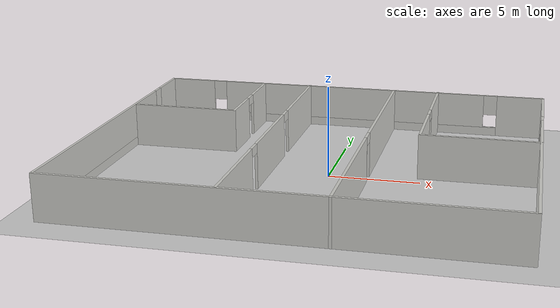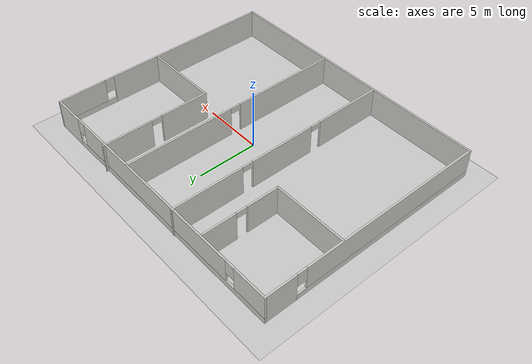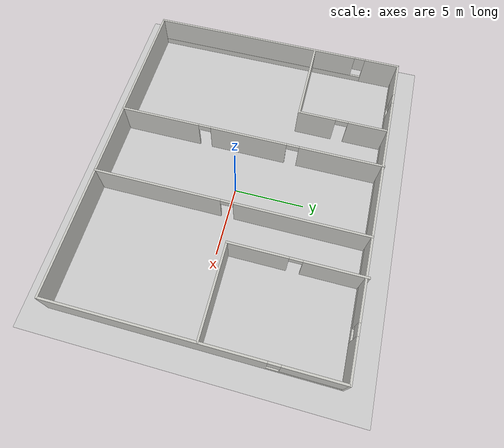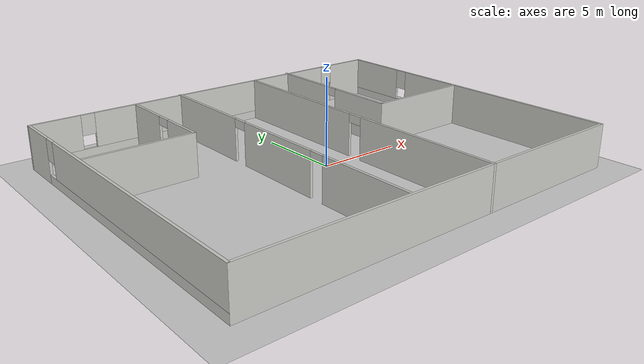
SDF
<sdf version="1.7">
 <world name="indoor">
  <light name="sun" type="directional">
   <pose>0 0 10 0 -0 0</pose>
   <diffuse>0.8 0.8 0.8 1</diffuse>
   <specular>0.2 0.2 0.2 1</specular>
   <attenuation>
    <range>1000</range>
    <constant>0.9</constant>
    <linear>0.01</linear>
    <quadratic>0.001</quadratic>
   </attenuation>
   <direction>-0.5 0.1 -0.9</direction>
   <spot><inner_angle>0</inner_angle><outer_angle>0</outer_angle><falloff>0</falloff></spot>
  </light>
  <model name="ground_plane">
   <static>1</static>
   <link name="link">
    <collision name="collision">
     <geometry><plane><normal>0 0 1</normal><size>100 100</size></plane></geometry>
     <surface>
      <contact><collide_bitmask>65535</collide_bitmask></contact>
      <friction><ode><mu>100</mu><mu2>50</mu2></ode></friction>
     </surface>
    </collision>
    <visual name="visual">
     <cast_shadows>0</cast_shadows>
     <geometry><plane><normal>0 0 1</normal><size>100 100</size></plane></geometry>
     <material>
      <script><uri>file://media/materials/scripts/gazebo.material</uri><name>Gazebo/Grey</name></script>
     </material>
    </visual>
   </link>
  </model>
  <gravity>0 0 -9.8</gravity>
  <magnetic_field>6e-06 2.3e-05 -4.2e-05</magnetic_field>
  <atmosphere type="adiabatic"/>
  <physics type="ode">
   <max_step_size>0.001</max_step_size>
   <real_time_factor>1</real_time_factor>
   <real_time_update_rate>1000</real_time_update_rate>
  </physics>
  <scene><ambient>0.4 0.4 0.4 1</ambient><background>0.7 0.7 0.7 1</background><shadows>1</shadows></scene>
  <audio><device>default</device></audio>
  <spherical_coordinates>
   <surface_model>EARTH_WGS84</surface_model>
   <latitude_deg>0</latitude_deg>
   <longitude_deg>0</longitude_deg>
   <elevation>0</elevation>
   <heading_deg>0</heading_deg>
  </spherical_coordinates>
  <model name="Untitled">
   <pose>-0.598824 0.224669 0 0 -0 0</pose>
   <link name="Wall_11">
    <pose>5.43872 5.08028 0 0 -0 -1.5708</pose>
    <visual name="Wall_11_Visual_0">
     <pose>-2.52034 0 1.25 0 -0 0</pose>
     <geometry><box><size>4.20933 0.15 2.5</size></box></geometry>
     <material>
      <script><uri>file://media/materials/scripts/gazebo.material</uri><name>Gazebo/CeilingTiled</name></script>
      <ambient>1 1 1 1</ambient>
     </material>
     <meta><layer>0</layer></meta>
    </visual>
    <collision name="Wall_11_Collision_0">
     <geometry><box><size>4.20933 0.15 2.5</size></box></geometry>
     <pose>-2.52034 0 1.25 0 -0 0</pose>
    </collision>
    <visual name="Wall_11_Visual_1">
     <pose>2.55466 0 1.25 0 -0 0</pose>
     <geometry><box><size>4.14067 0.15 2.5</size></box></geometry>
     <material>
      <script><uri>file://media/materials/scripts/gazebo.material</uri><name>Gazebo/CeilingTiled</name></script>
      <ambient>1 1 1 1</ambient>
     </material>
     <meta><layer>0</layer></meta>
    </visual>
    <collision name="Wall_11_Collision_1">
     <geometry><box><size>4.14067 0.15 2.5</size></box></geometry>
     <pose>2.55466 0 1.25 0 -0 0</pose>
    </collision>
    <visual name="Wall_11_Visual_2">
     <pose>0.034327 0 2.25 0 -0 0</pose>
     <geometry><box><size>0.9 0.15 0.5</size></box></geometry>
     <material>
      <script><uri>file://media/materials/scripts/gazebo.material</uri><name>Gazebo/CeilingTiled</name></script>
      <ambient>1 1 1 1</ambient>
     </material>
     <meta><layer>0</layer></meta>
    </visual>
    <collision name="Wall_11_Collision_2">
     <geometry><box><size>0.9 0.15 0.5</size></box></geometry>
     <pose>0.034327 0 2.25 0 -0 0</pose>
    </collision>
   </link>
   <link name="Wall_12">
    <collision name="Wall_12_Collision">
     <geometry><box><size>6.5 0.15 2.5</size></box></geometry>
     <pose>0 0 1.25 0 -0 0</pose>
    </collision>
    <visual name="Wall_12_Visual">
     <pose>0 0 1.25 0 -0 0</pose>
     <geometry><box><size>6.5 0.15 2.5</size></box></geometry>
     <material>
      <script><uri>file://media/materials/scripts/gazebo.material</uri><name>Gazebo/CeilingTiled</name></script>
      <ambient>1 1 1 1</ambient>
     </material>
     <meta><layer>0</layer></meta>
    </visual>
    <pose>8.61372 0.530282 0 0 -0 0</pose>
   </link>
   <link name="Wall_14">
    <pose>-2.66764 -0.01641 0 0 -0 -1.5708</pose>
    <visual name="Wall_14_Visual_0">
     <pose>-6.59866 0 1.25 0 -0 0</pose>
     <geometry><box><size>6.05267 0.15 2.5</size></box></geometry>
     <material>
      <script><uri>file://media/materials/scripts/gazebo.material</uri><name>Gazebo/CeilingTiled</name></script>
      <ambient>1 1 1 1</ambient>
     </material>
     <meta><layer>0</layer></meta>
    </visual>
    <collision name="Wall_14_Collision_0">
     <geometry><box><size>6.05267 0.15 2.5</size></box></geometry>
     <pose>-6.59866 0 1.25 0 -0 0</pose>
    </collision>
    <visual name="Wall_14_Visual_1">
     <pose>0.122899 0 1.25 0 -0 0</pose>
     <geometry><box><size>5.59045 0.15 2.5</size></box></geometry>
     <material>
      <script><uri>file://media/materials/scripts/gazebo.material</uri><name>Gazebo/CeilingTiled</name></script>
      <ambient>1 1 1 1</ambient>
     </material>
     <meta><layer>0</layer></meta>
    </visual>
    <collision name="Wall_14_Collision_1">
     <geometry><box><size>5.59045 0.15 2.5</size></box></geometry>
     <pose>0.122899 0 1.25 0 -0 0</pose>
    </collision>
    <visual name="Wall_14_Visual_2">
     <pose>6.72156 0 1.25 0 -0 0</pose>
     <geometry><box><size>5.80688 0.15 2.5</size></box></geometry>
     <material>
      <script><uri>file://media/materials/scripts/gazebo.material</uri><name>Gazebo/CeilingTiled</name></script>
      <ambient>1 1 1 1</ambient>
     </material>
     <meta><layer>0</layer></meta>
    </visual>
    <collision name="Wall_14_Collision_2">
     <geometry><box><size>5.80688 0.15 2.5</size></box></geometry>
     <pose>6.72156 0 1.25 0 -0 0</pose>
    </collision>
    <visual name="Wall_14_Visual_3">
     <pose>-3.12233 0 2.25 0 -0 0</pose>
     <geometry><box><size>0.9 0.15 0.5</size></box></geometry>
     <material>
      <script><uri>file://media/materials/scripts/gazebo.material</uri><name>Gazebo/CeilingTiled</name></script>
      <ambient>1 1 1 1</ambient>
     </material>
     <meta><layer>0</layer></meta>
    </visual>
    <collision name="Wall_14_Collision_3">
     <geometry><box><size>0.9 0.15 0.5</size></box></geometry>
     <pose>-3.12233 0 2.25 0 -0 0</pose>
    </collision>
    <visual name="Wall_14_Visual_4">
     <pose>3.36812 0 2.25 0 -0 0</pose>
     <geometry><box><size>0.9 0.15 0.5</size></box></geometry>
     <material>
      <script><uri>file://media/materials/scripts/gazebo.material</uri><name>Gazebo/CeilingTiled</name></script>
      <ambient>1 1 1 1</ambient>
     </material>
     <meta><layer>0</layer></meta>
    </visual>
    <collision name="Wall_14_Collision_4">
     <geometry><box><size>0.9 0.15 0.5</size></box></geometry>
     <pose>3.36812 0 2.25 0 -0 0</pose>
    </collision>
   </link>
   <link name="Wall_16">
    <pose>2.71269 -0.080282 0 0 -0 -1.5708</pose>
    <visual name="Wall_16_Visual_0">
     <pose>-4.96809 0 1.25 0 -0 0</pose>
     <geometry><box><size>9.31383 0.15 2.5</size></box></geometry>
     <material>
      <script><uri>file://media/materials/scripts/gazebo.material</uri><name>Gazebo/CeilingTiled</name></script>
      <ambient>1 1 1 1</ambient>
     </material>
     <meta><layer>0</layer></meta>
    </visual>
    <collision name="Wall_16_Collision_0">
     <geometry><box><size>9.31383 0.15 2.5</size></box></geometry>
     <pose>-4.96809 0 1.25 0 -0 0</pose>
    </collision>
    <visual name="Wall_16_Visual_1">
     <pose>5.10691 0 1.25 0 -0 0</pose>
     <geometry><box><size>9.03617 0.15 2.5</size></box></geometry>
     <material>
      <script><uri>file://media/materials/scripts/gazebo.material</uri><name>Gazebo/CeilingTiled</name></script>
      <ambient>1 1 1 1</ambient>
     </material>
     <meta><layer>0</layer></meta>
    </visual>
    <collision name="Wall_16_Collision_1">
     <geometry><box><size>9.03617 0.15 2.5</size></box></geometry>
     <pose>5.10691 0 1.25 0 -0 0</pose>
    </collision>
    <visual name="Wall_16_Visual_2">
     <pose>0.138828 0 2.25 0 -0 0</pose>
     <geometry><box><size>0.9 0.15 0.5</size></box></geometry>
     <material>
      <script><uri>file://media/materials/scripts/gazebo.material</uri><name>Gazebo/CeilingTiled</name></script>
      <ambient>1 1 1 1</ambient>
     </material>
     <meta><layer>0</layer></meta>
    </visual>
    <collision name="Wall_16_Collision_2">
     <geometry><box><size>0.9 0.15 0.5</size></box></geometry>
     <pose>0.138828 0 2.25 0 -0 0</pose>
    </collision>
   </link>
   <link name="Wall_3">
    <pose>-11.8 -0.078916 0 0 -0 -1.5708</pose>
    <visual name="Wall_3_Visual_0">
     <pose>-8.30761 0 1.25 0 -0 0</pose>
     <geometry><box><size>2.63479 0.15 2.5</size></box></geometry>
     <material>
      <script><uri>file://media/materials/scripts/gazebo.material</uri><name>Gazebo/CeilingTiled</name></script>
      <ambient>1 1 1 1</ambient>
     </material>
     <meta><layer>0</layer></meta>
    </visual>
    <collision name="Wall_3_Collision_0">
     <geometry><box><size>2.63479 0.15 2.5</size></box></geometry>
     <pose>-8.30761 0 1.25 0 -0 0</pose>
    </collision>
    <visual name="Wall_3_Visual_1">
     <pose>1.31739 0 0.25 0 -0 0</pose>
     <geometry><box><size>16.6152 0.15 0.5</size></box></geometry>
     <material>
      <script><uri>file://media/materials/scripts/gazebo.material</uri><name>Gazebo/CeilingTiled</name></script>
      <ambient>1 1 1 1</ambient>
     </material>
     <meta><layer>0</layer></meta>
    </visual>
    <collision name="Wall_3_Collision_1">
     <geometry><box><size>16.6152 0.15 0.5</size></box></geometry>
     <pose>1.31739 0 0.25 0 -0 0</pose>
    </collision>
    <visual name="Wall_3_Visual_2">
     <pose>1.71739 0 1.5 0 -0 0</pose>
     <geometry><box><size>15.8152 0.15 2</size></box></geometry>
     <material>
      <script><uri>file://media/materials/scripts/gazebo.material</uri><name>Gazebo/CeilingTiled</name></script>
      <ambient>1 1 1 1</ambient>
     </material>
     <meta><layer>0</layer></meta>
    </visual>
    <collision name="Wall_3_Collision_2">
     <geometry><box><size>15.8152 0.15 2</size></box></geometry>
     <pose>1.71739 0 1.5 0 -0 0</pose>
    </collision>
    <visual name="Wall_3_Visual_3">
     <pose>-6.59021 0 1.9 0 -0 0</pose>
     <geometry><box><size>0.8 0.15 1.2</size></box></geometry>
     <material>
      <script><uri>file://media/materials/scripts/gazebo.material</uri><name>Gazebo/CeilingTiled</name></script>
      <ambient>1 1 1 1</ambient>
     </material>
     <meta><layer>0</layer></meta>
    </visual>
    <collision name="Wall_3_Collision_3">
     <geometry><box><size>0.8 0.15 1.2</size></box></geometry>
     <pose>-6.59021 0 1.9 0 -0 0</pose>
    </collision>
   </link>
   <link name="Wall_4">
    <collision name="Wall_4_Collision">
     <geometry><box><size>23.75 0.15 2.5</size></box></geometry>
     <pose>0 0 1.25 0 -0 0</pose>
    </collision>
    <visual name="Wall_4_Visual">
     <pose>0 0 1.25 0 -0 0</pose>
     <geometry><box><size>23.75 0.15 2.5</size></box></geometry>
     <material>
      <script><uri>file://media/materials/scripts/gazebo.material</uri><name>Gazebo/CeilingTiled</name></script>
      <ambient>1 1 1 1</ambient>
     </material>
     <meta><layer>0</layer></meta>
    </visual>
    <pose>0 -9.62892 0 0 -0 0</pose>
   </link>
   <link name="Wall_5">
    <pose>11.8 -0.078916 0 0 -0 1.5708</pose>
    <visual name="Wall_5_Visual_0">
     <pose>-2.41508 0 1.25 0 -0 0</pose>
     <geometry><box><size>14.4198 0.15 2.5</size></box></geometry>
     <material>
      <script><uri>file://media/materials/scripts/gazebo.material</uri><name>Gazebo/CeilingTiled</name></script>
      <ambient>1 1 1 1</ambient>
     </material>
     <meta><layer>0</layer></meta>
    </visual>
    <collision name="Wall_5_Collision_0">
     <geometry><box><size>14.4198 0.15 2.5</size></box></geometry>
     <pose>-2.41508 0 1.25 0 -0 0</pose>
    </collision>
    <visual name="Wall_5_Visual_1">
     <pose>7.20992 0 0.25 0 -0 0</pose>
     <geometry><box><size>4.83017 0.15 0.5</size></box></geometry>
     <material>
      <script><uri>file://media/materials/scripts/gazebo.material</uri><name>Gazebo/CeilingTiled</name></script>
      <ambient>1 1 1 1</ambient>
     </material>
     <meta><layer>0</layer></meta>
    </visual>
    <collision name="Wall_5_Collision_1">
     <geometry><box><size>4.83017 0.15 0.5</size></box></geometry>
     <pose>7.20992 0 0.25 0 -0 0</pose>
    </collision>
    <visual name="Wall_5_Visual_2">
     <pose>7.60992 0 1.5 0 -0 0</pose>
     <geometry><box><size>4.03017 0.15 2</size></box></geometry>
     <material>
      <script><uri>file://media/materials/scripts/gazebo.material</uri><name>Gazebo/CeilingTiled</name></script>
      <ambient>1 1 1 1</ambient>
     </material>
     <meta><layer>0</layer></meta>
    </visual>
    <collision name="Wall_5_Collision_2">
     <geometry><box><size>4.03017 0.15 2</size></box></geometry>
     <pose>7.60992 0 1.5 0 -0 0</pose>
    </collision>
    <visual name="Wall_5_Visual_3">
     <pose>5.19483 0 1.9 0 -0 0</pose>
     <geometry><box><size>0.8 0.15 1.2</size></box></geometry>
     <material>
      <script><uri>file://media/materials/scripts/gazebo.material</uri><name>Gazebo/CeilingTiled</name></script>
      <ambient>1 1 1 1</ambient>
     </material>
     <meta><layer>0</layer></meta>
    </visual>
    <collision name="Wall_5_Collision_3">
     <geometry><box><size>0.8 0.15 1.2</size></box></geometry>
     <pose>5.19483 0 1.9 0 -0 0</pose>
    </collision>
   </link>
   <link name="Wall_6">
    <pose>0 9.47108 0 0 -0 3.14159</pose>
    <visual name="Wall_6_Visual_0">
     <pose>-10.4729 0 1.25 0 -0 0</pose>
     <geometry><box><size>2.80416 0.15 2.5</size></box></geometry>
     <material>
      <script><uri>file://media/materials/scripts/gazebo.material</uri><name>Gazebo/CeilingTiled</name></script>
      <ambient>1 1 1 1</ambient>
     </material>
     <meta><layer>0</layer></meta>
    </visual>
    <collision name="Wall_6_Collision_0">
     <geometry><box><size>2.80416 0.15 2.5</size></box></geometry>
     <pose>-10.4729 0 1.25 0 -0 0</pose>
    </collision>
    <visual name="Wall_6_Visual_1">
     <pose>1.40208 0 0.25 0 -0 0</pose>
     <geometry><box><size>20.9458 0.15 0.5</size></box></geometry>
     <material>
      <script><uri>file://media/materials/scripts/gazebo.material</uri><name>Gazebo/CeilingTiled</name></script>
      <ambient>1 1 1 1</ambient>
     </material>
     <meta><layer>0</layer></meta>
    </visual>
    <collision name="Wall_6_Collision_1">
     <geometry><box><size>20.9458 0.15 0.5</size></box></geometry>
     <pose>1.40208 0 0.25 0 -0 0</pose>
    </collision>
    <visual name="Wall_6_Visual_2">
     <pose>-0.036619 0 1.5 0 -0 0</pose>
     <geometry><box><size>16.4685 0.15 2</size></box></geometry>
     <material>
      <script><uri>file://media/materials/scripts/gazebo.material</uri><name>Gazebo/CeilingTiled</name></script>
      <ambient>1 1 1 1</ambient>
     </material>
     <meta><layer>0</layer></meta>
    </visual>
    <collision name="Wall_6_Collision_2">
     <geometry><box><size>16.4685 0.15 2</size></box></geometry>
     <pose>-0.036619 0 1.5 0 -0 0</pose>
    </collision>
    <visual name="Wall_6_Visual_3">
     <pose>10.4363 0 1.5 0 -0 0</pose>
     <geometry><box><size>2.87739 0.15 2</size></box></geometry>
     <material>
      <script><uri>file://media/materials/scripts/gazebo.material</uri><name>Gazebo/CeilingTiled</name></script>
      <ambient>1 1 1 1</ambient>
     </material>
     <meta><layer>0</layer></meta>
    </visual>
    <collision name="Wall_6_Collision_3">
     <geometry><box><size>2.87739 0.15 2</size></box></geometry>
     <pose>10.4363 0 1.5 0 -0 0</pose>
    </collision>
    <visual name="Wall_6_Visual_4">
     <pose>-8.67084 0 1.9 0 -0 0</pose>
     <geometry><box><size>0.8 0.15 1.2</size></box></geometry>
     <material>
      <script><uri>file://media/materials/scripts/gazebo.material</uri><name>Gazebo/CeilingTiled</name></script>
      <ambient>1 1 1 1</ambient>
     </material>
     <meta><layer>0</layer></meta>
    </visual>
    <collision name="Wall_6_Collision_4">
     <geometry><box><size>0.8 0.15 1.2</size></box></geometry>
     <pose>-8.67084 0 1.9 0 -0 0</pose>
    </collision>
    <visual name="Wall_6_Visual_5">
     <pose>8.59761 0 1.9 0 -0 0</pose>
     <geometry><box><size>0.8 0.15 1.2</size></box></geometry>
     <material>
      <script><uri>file://media/materials/scripts/gazebo.material</uri><name>Gazebo/CeilingTiled</name></script>
      <ambient>1 1 1 1</ambient>
     </material>
     <meta><layer>0</layer></meta>
    </visual>
    <collision name="Wall_6_Collision_5">
     <geometry><box><size>0.8 0.15 1.2</size></box></geometry>
     <pose>8.59761 0 1.9 0 -0 0</pose>
    </collision>
   </link>
   <link name="Wall_8">
    <collision name="Wall_8_Collision">
     <geometry><box><size>6.25 0.15 2.5</size></box></geometry>
     <pose>0 0 1.25 0 -0 0</pose>
    </collision>
    <visual name="Wall_8_Visual">
     <pose>0 0 1.25 0 -0 0</pose>
     <geometry><box><size>6.25 0.15 2.5</size></box></geometry>
     <material>
      <script><uri>file://media/materials/scripts/gazebo.material</uri><name>Gazebo/CeilingTiled</name></script>
      <ambient>1 1 1 1</ambient>
     </material>
     <meta><layer>0</layer></meta>
    </visual>
    <pose>-8.6968 2.95404 0 0 -0 0</pose>
   </link>
   <link name="Wall_9">
    <pose>-5.6468 6.12904 0 0 -0 1.5708</pose>
    <visual name="Wall_9_Visual_0">
     <pose>-1.8542 0 1.25 0 -0 0</pose>
     <geometry><box><size>2.79159 0.15 2.5</size></box></geometry>
     <material>
      <script><uri>file://media/materials/scripts/gazebo.material</uri><name>Gazebo/CeilingTiled</name></script>
      <ambient>1 1 1 1</ambient>
     </material>
     <meta><layer>0</layer></meta>
    </visual>
    <collision name="Wall_9_Collision_0">
     <geometry><box><size>2.79159 0.15 2.5</size></box></geometry>
     <pose>-1.8542 0 1.25 0 -0 0</pose>
    </collision>
    <visual name="Wall_9_Visual_1">
     <pose>1.8458 0 1.25 0 -0 0</pose>
     <geometry><box><size>2.80841 0.15 2.5</size></box></geometry>
     <material>
      <script><uri>file://media/materials/scripts/gazebo.material</uri><name>Gazebo/CeilingTiled</name></script>
      <ambient>1 1 1 1</ambient>
     </material>
     <meta><layer>0</layer></meta>
    </visual>
    <collision name="Wall_9_Collision_1">
     <geometry><box><size>2.80841 0.15 2.5</size></box></geometry>
     <pose>1.8458 0 1.25 0 -0 0</pose>
    </collision>
    <visual name="Wall_9_Visual_2">
     <pose>-0.008409 0 2.25 0 -0 0</pose>
     <geometry><box><size>0.9 0.15 0.5</size></box></geometry>
     <material>
      <script><uri>file://media/materials/scripts/gazebo.material</uri><name>Gazebo/CeilingTiled</name></script>
      <ambient>1 1 1 1</ambient>
     </material>
     <meta><layer>0</layer></meta>
    </visual>
    <collision name="Wall_9_Collision_2">
     <geometry><box><size>0.9 0.15 0.5</size></box></geometry>
     <pose>-0.008409 0 2.25 0 -0 0</pose>
    </collision>
   </link>
   <static>1</static>
  </model>
 </world>
</sdf>
